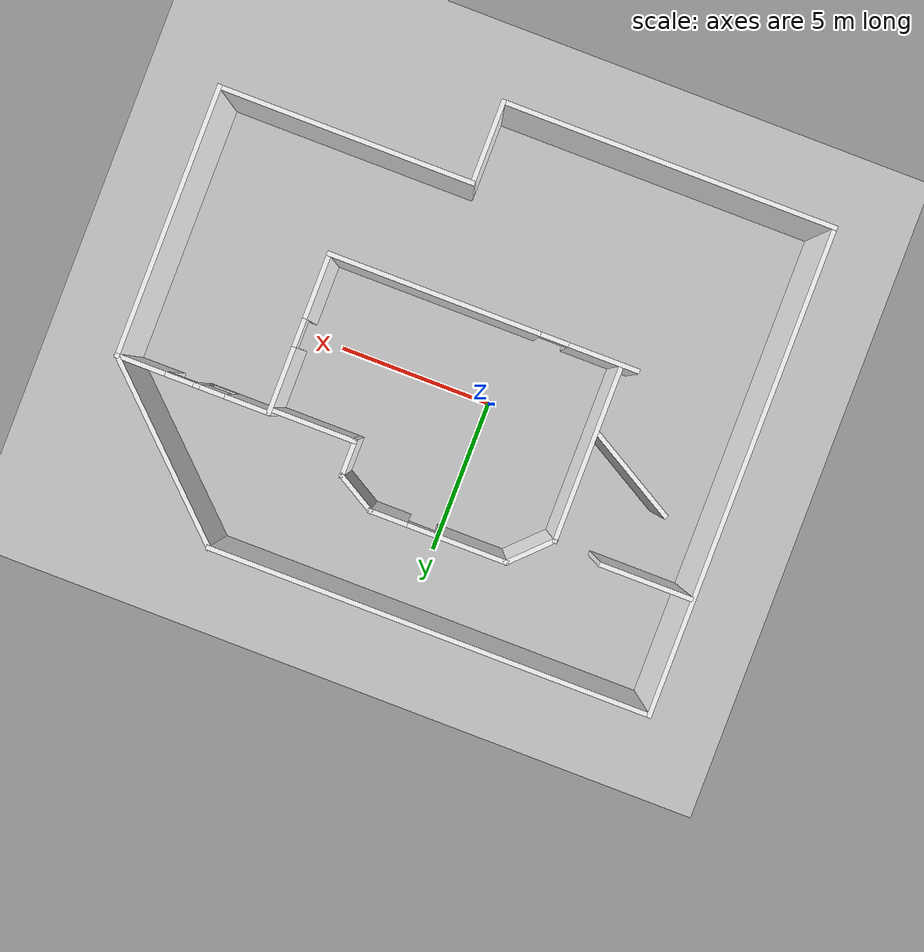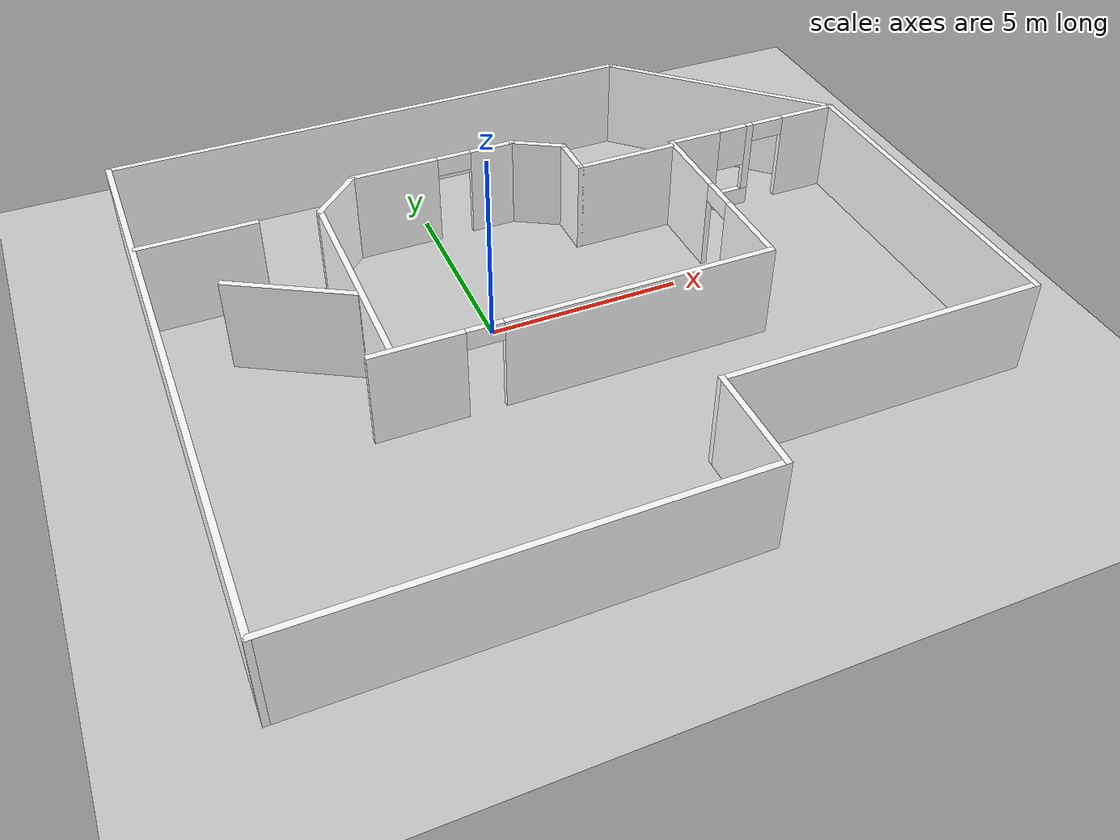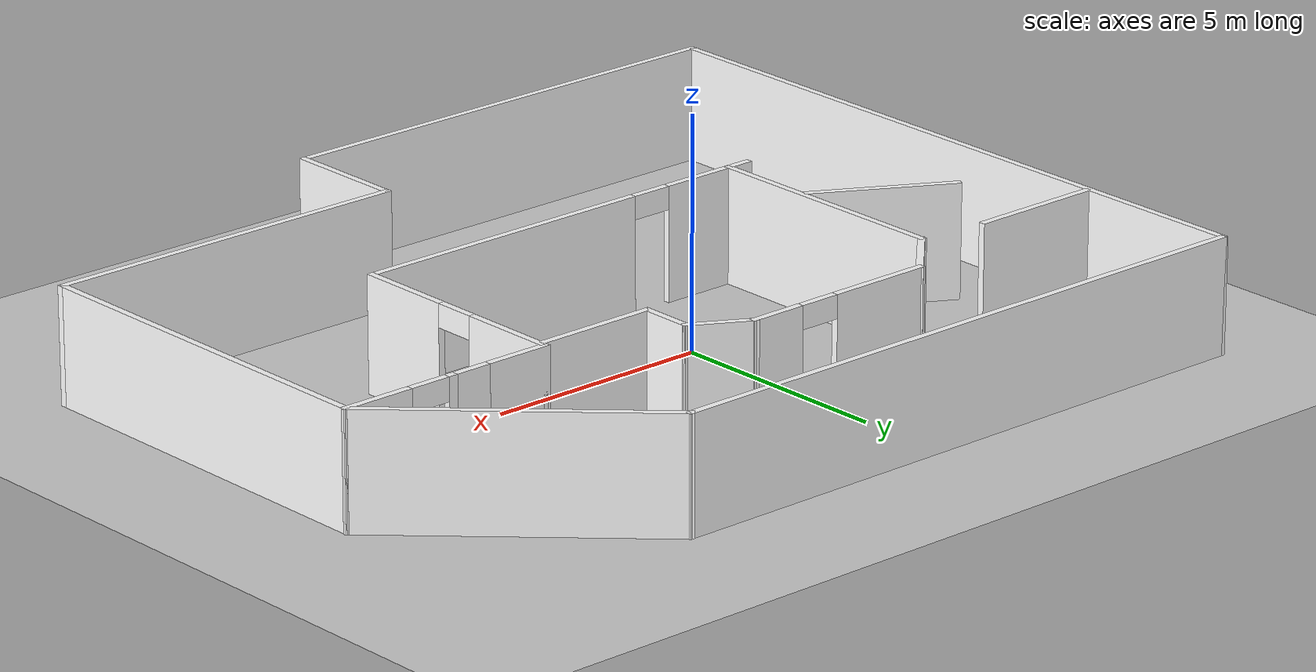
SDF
<?xml version="1.0" ?>
<sdf version="1.6">
  <world name="empty_world">
    <include>
      <uri>model://ground_plane</uri>
    </include>

    <include>
      <uri>model://sun</uri>
    </include>

    <physics type="ode">
      <max_step_size>0.001</max_step_size>
      <real_time_factor>1.0</real_time_factor>
      <real_time_update_rate>1000</real_time_update_rate>
    </physics>

    <model name='Untitled'>
    <pose>1.64552 -0.764481 0 0 -0 0</pose>
    <link name='Wall_0'>
      <pose>-0.44052 -1.71552 0 0 -0 0</pose>
      <visual name='Wall_0_Visual_0'>
        <pose>-3.86774 0 1.25 0 -0 0</pose>
        <geometry>
          <box>
            <size>2.26452 0.15 2.5</size>
          </box>
        </geometry>
        <material>
          <script>
            <uri>file://media/materials/scripts/gazebo.material</uri>
            <name>Gazebo/Brick</name>
          </script>
          <ambient>1 1 1 1</ambient>
        </material>
        <meta>
          <layer>0</layer>
        </meta>
      </visual>
      <collision name='Wall_0_Collision_0'>
        <geometry>
          <box>
            <size>2.26452 0.15 2.5</size>
          </box>
        </geometry>
        <pose>-3.86774 0 1.25 0 -0 0</pose>
      </collision>
      <visual name='Wall_0_Visual_1'>
        <pose>1.58226 0 1.25 0 -0 0</pose>
        <geometry>
          <box>
            <size>6.83548 0.15 2.5</size>
          </box>
        </geometry>
        <material>
          <script>
            <uri>file://media/materials/scripts/gazebo.material</uri>
            <name>Gazebo/Brick</name>
          </script>
          <ambient>1 1 1 1</ambient>
        </material>
        <meta>
          <layer>0</layer>
        </meta>
      </visual>
      <collision name='Wall_0_Collision_1'>
        <geometry>
          <box>
            <size>6.83548 0.15 2.5</size>
          </box>
        </geometry>
        <pose>1.58226 0 1.25 0 -0 0</pose>
      </collision>
      <visual name='Wall_0_Visual_2'>
        <pose>-2.28548 0 2.25 0 -0 0</pose>
        <geometry>
          <box>
            <size>0.9 0.15 0.5</size>
          </box>
        </geometry>
        <material>
          <script>
            <uri>file://media/materials/scripts/gazebo.material</uri>
            <name>Gazebo/Brick</name>
          </script>
          <ambient>1 1 1 1</ambient>
        </material>
        <meta>
          <layer>0</layer>
        </meta>
      </visual>
      <collision name='Wall_0_Collision_2'>
        <geometry>
          <box>
            <size>0.9 0.15 0.5</size>
          </box>
        </geometry>
        <pose>-2.28548 0 2.25 0 -0 0</pose>
      </collision>
    </link>
    <link name='Wall_1'>
      <pose>4.48448 0.834481 0 0 -0 1.5708</pose>
      <visual name='Wall_1_Visual_0'>
        <pose>-1.54945 0 1.25 0 -0 0</pose>
        <geometry>
          <box>
            <size>2.1511 0.15 2.5</size>
          </box>
        </geometry>
        <material>
          <script>
            <uri>file://media/materials/scripts/gazebo.material</uri>
            <name>Gazebo/Brick</name>
          </script>
          <ambient>1 1 1 1</ambient>
        </material>
        <meta>
          <layer>0</layer>
        </meta>
      </visual>
      <collision name='Wall_1_Collision_0'>
        <geometry>
          <box>
            <size>2.1511 0.15 2.5</size>
          </box>
        </geometry>
        <pose>-1.54945 0 1.25 0 -0 0</pose>
      </collision>
      <visual name='Wall_1_Visual_1'>
        <pose>1.52555 0 1.25 0 -0 0</pose>
        <geometry>
          <box>
            <size>2.1989 0.15 2.5</size>
          </box>
        </geometry>
        <material>
          <script>
            <uri>file://media/materials/scripts/gazebo.material</uri>
            <name>Gazebo/Brick</name>
          </script>
          <ambient>1 1 1 1</ambient>
        </material>
        <meta>
          <layer>0</layer>
        </meta>
      </visual>
      <collision name='Wall_1_Collision_1'>
        <geometry>
          <box>
            <size>2.1989 0.15 2.5</size>
          </box>
        </geometry>
        <pose>1.52555 0 1.25 0 -0 0</pose>
      </collision>
      <visual name='Wall_1_Visual_2'>
        <pose>-0.023899 0 2.25 0 -0 0</pose>
        <geometry>
          <box>
            <size>0.9 0.15 0.5</size>
          </box>
        </geometry>
        <material>
          <script>
            <uri>file://media/materials/scripts/gazebo.material</uri>
            <name>Gazebo/Brick</name>
          </script>
          <ambient>1 1 1 1</ambient>
        </material>
        <meta>
          <layer>0</layer>
        </meta>
      </visual>
      <collision name='Wall_1_Collision_2'>
        <geometry>
          <box>
            <size>0.9 0.15 0.5</size>
          </box>
        </geometry>
        <pose>-0.023899 0 2.25 0 -0 0</pose>
      </collision>
    </link>
    <link name='Wall_11'>
      <collision name='Wall_11_Collision'>
        <geometry>
          <box>
            <size>5.75 0.15 2.5</size>
          </box>
        </geometry>
        <pose>0 0 1.25 0 -0 0</pose>
      </collision>
      <visual name='Wall_11_Visual'>
        <pose>0 0 1.25 0 -0 0</pose>
        <geometry>
          <box>
            <size>5.75 0.15 2.5</size>
          </box>
        </geometry>
        <material>
          <script>
            <uri>file://media/materials/scripts/gazebo.material</uri>
            <name>Gazebo/Brick</name>
          </script>
          <ambient>1 1 1 1</ambient>
        </material>
        <meta>
          <layer>0</layer>
        </meta>
      </visual>
      <pose>-4.87015 1.10234 0 0 -0 1.5708</pose>
    </link>
    <link name='Wall_12'>
      <collision name='Wall_12_Collision'>
        <geometry>
          <box>
            <size>1.75 0.15 2.5</size>
          </box>
        </geometry>
        <pose>0 0 1.25 0 -0 0</pose>
      </collision>
      <visual name='Wall_12_Visual'>
        <pose>0 0 1.25 0 -0 0</pose>
        <geometry>
          <box>
            <size>1.75 0.15 2.5</size>
          </box>
        </geometry>
        <material>
          <script>
            <uri>file://media/materials/scripts/gazebo.material</uri>
            <name>Gazebo/Brick</name>
          </script>
          <ambient>1 1 1 1</ambient>
        </material>
        <meta>
          <layer>0</layer>
        </meta>
      </visual>
      <pose>-4.30446 4.46802 0 0 -0 0.785398</pose>
    </link>
    <link name='Wall_13'>
      <pose>-1.56378 5.03371 0 0 -0 0</pose>
      <visual name='Wall_13_Visual_0'>
        <pose>-1.08154 0 1.25 0 -0 0</pose>
        <geometry>
          <box>
            <size>2.33691 0.15 2.5</size>
          </box>
        </geometry>
        <material>
          <script>
            <uri>file://media/materials/scripts/gazebo.material</uri>
            <name>Gazebo/Brick</name>
          </script>
          <ambient>1 1 1 1</ambient>
        </material>
        <meta>
          <layer>0</layer>
        </meta>
      </visual>
      <collision name='Wall_13_Collision_0'>
        <geometry>
          <box>
            <size>2.33691 0.15 2.5</size>
          </box>
        </geometry>
        <pose>-1.08154 0 1.25 0 -0 0</pose>
      </collision>
      <visual name='Wall_13_Visual_1'>
        <pose>1.61845 0 1.25 0 -0 0</pose>
        <geometry>
          <box>
            <size>1.26309 0.15 2.5</size>
          </box>
        </geometry>
        <material>
          <script>
            <uri>file://media/materials/scripts/gazebo.material</uri>
            <name>Gazebo/Brick</name>
          </script>
          <ambient>1 1 1 1</ambient>
        </material>
        <meta>
          <layer>0</layer>
        </meta>
      </visual>
      <collision name='Wall_13_Collision_1'>
        <geometry>
          <box>
            <size>1.26309 0.15 2.5</size>
          </box>
        </geometry>
        <pose>1.61845 0 1.25 0 -0 0</pose>
      </collision>
      <visual name='Wall_13_Visual_2'>
        <pose>0.536909 0 2.25 0 -0 0</pose>
        <geometry>
          <box>
            <size>0.9 0.15 0.5</size>
          </box>
        </geometry>
        <material>
          <script>
            <uri>file://media/materials/scripts/gazebo.material</uri>
            <name>Gazebo/Brick</name>
          </script>
          <ambient>1 1 1 1</ambient>
        </material>
        <meta>
          <layer>0</layer>
        </meta>
      </visual>
      <collision name='Wall_13_Collision_2'>
        <geometry>
          <box>
            <size>0.9 0.15 0.5</size>
          </box>
        </geometry>
        <pose>0.536909 0 2.25 0 -0 0</pose>
      </collision>
    </link>
    <link name='Wall_14'>
      <collision name='Wall_14_Collision'>
        <geometry>
          <box>
            <size>1.5 0.15 2.5</size>
          </box>
        </geometry>
        <pose>0 0 1.25 0 -0 0</pose>
      </collision>
      <visual name='Wall_14_Visual'>
        <pose>0 0 1.25 0 -0 0</pose>
        <geometry>
          <box>
            <size>1.5 0.15 2.5</size>
          </box>
        </geometry>
        <material>
          <script>
            <uri>file://media/materials/scripts/gazebo.material</uri>
            <name>Gazebo/Brick</name>
          </script>
          <ambient>1 1 1 1</ambient>
        </material>
        <meta>
          <layer>0</layer>
        </meta>
      </visual>
      <pose>1.19579 4.69621 0 0 -0 -0.523599</pose>
    </link>
    <link name='Wall_15'>
      <collision name='Wall_15_Collision'>
        <geometry>
          <box>
            <size>1.25 0.15 2.5</size>
          </box>
        </geometry>
        <pose>0 0 1.25 0 -0 0</pose>
      </collision>
      <visual name='Wall_15_Visual'>
        <pose>0 0 1.25 0 -0 0</pose>
        <geometry>
          <box>
            <size>1.25 0.15 2.5</size>
          </box>
        </geometry>
        <material>
          <script>
            <uri>file://media/materials/scripts/gazebo.material</uri>
            <name>Gazebo/Brick</name>
          </script>
          <ambient>1 1 1 1</ambient>
        </material>
        <meta>
          <layer>0</layer>
        </meta>
      </visual>
      <pose>1.78036 3.80871 0 0 -0 -1.5708</pose>
    </link>
    <link name='Wall_16'>
      <collision name='Wall_16_Collision'>
        <geometry>
          <box>
            <size>2.75 0.15 2.5</size>
          </box>
        </geometry>
        <pose>0 0 1.25 0 -0 0</pose>
      </collision>
      <visual name='Wall_16_Visual'>
        <pose>0 0 1.25 0 -0 0</pose>
        <geometry>
          <box>
            <size>2.75 0.15 2.5</size>
          </box>
        </geometry>
        <material>
          <script>
            <uri>file://media/materials/scripts/gazebo.material</uri>
            <name>Gazebo/Brick</name>
          </script>
          <ambient>1 1 1 1</ambient>
        </material>
        <meta>
          <layer>0</layer>
        </meta>
      </visual>
      <pose>3.08036 3.25871 0 0 -0 0</pose>
    </link>
    <link name='Wall_18'>
      <collision name='Wall_18_Collision'>
        <geometry>
          <box>
            <size>3 0.15 2.5</size>
          </box>
        </geometry>
        <pose>0 0 1.25 0 -0 0</pose>
      </collision>
      <visual name='Wall_18_Visual'>
        <pose>0 0 1.25 0 -0 0</pose>
        <geometry>
          <box>
            <size>3 0.15 2.5</size>
          </box>
        </geometry>
        <material>
          <script>
            <uri>file://media/materials/scripts/gazebo.material</uri>
            <name>Gazebo/Brick</name>
          </script>
          <ambient>1 1 1 1</ambient>
        </material>
        <meta>
          <layer>0</layer>
        </meta>
      </visual>
      <pose>-7.8548 4.08748 0 0 -0 0</pose>
    </link>
    <link name='Wall_2'>
      <pose>6.90948 3.38448 0 0 -0 0</pose>
      <visual name='Wall_2_Visual_0'>
        <pose>-1.75694 0 1.25 0 -0 0</pose>
        <geometry>
          <box>
            <size>1.48611 0.15 2.5</size>
          </box>
        </geometry>
        <material>
          <script>
            <uri>file://media/materials/scripts/gazebo.material</uri>
            <name>Gazebo/Brick</name>
          </script>
          <ambient>1 1 1 1</ambient>
        </material>
        <meta>
          <layer>0</layer>
        </meta>
      </visual>
      <collision name='Wall_2_Collision_0'>
        <geometry>
          <box>
            <size>1.48611 0.15 2.5</size>
          </box>
        </geometry>
        <pose>-1.75694 0 1.25 0 -0 0</pose>
      </collision>
      <visual name='Wall_2_Visual_1'>
        <pose>1.69398 0 1.25 0 -0 0</pose>
        <geometry>
          <box>
            <size>1.61204 0.15 2.5</size>
          </box>
        </geometry>
        <material>
          <script>
            <uri>file://media/materials/scripts/gazebo.material</uri>
            <name>Gazebo/Brick</name>
          </script>
          <ambient>1 1 1 1</ambient>
        </material>
        <meta>
          <layer>0</layer>
        </meta>
      </visual>
      <collision name='Wall_2_Collision_1'>
        <geometry>
          <box>
            <size>1.61204 0.15 2.5</size>
          </box>
        </geometry>
        <pose>1.69398 0 1.25 0 -0 0</pose>
      </collision>
      <visual name='Wall_2_Visual_2'>
        <pose>-0.512965 0 0.25 0 -0 0</pose>
        <geometry>
          <box>
            <size>1.00185 0.15 0.5</size>
          </box>
        </geometry>
        <material>
          <script>
            <uri>file://media/materials/scripts/gazebo.material</uri>
            <name>Gazebo/Brick</name>
          </script>
          <ambient>1 1 1 1</ambient>
        </material>
        <meta>
          <layer>0</layer>
        </meta>
      </visual>
      <collision name='Wall_2_Collision_2'>
        <geometry>
          <box>
            <size>1.00185 0.15 0.5</size>
          </box>
        </geometry>
        <pose>-0.512965 0 0.25 0 -0 0</pose>
      </collision>
      <visual name='Wall_2_Visual_3'>
        <pose>-0.112965 0 1.5 0 -0 0</pose>
        <geometry>
          <box>
            <size>0.201845 0.15 2</size>
          </box>
        </geometry>
        <material>
          <script>
            <uri>file://media/materials/scripts/gazebo.material</uri>
            <name>Gazebo/Brick</name>
          </script>
          <ambient>1 1 1 1</ambient>
        </material>
        <meta>
          <layer>0</layer>
        </meta>
      </visual>
      <collision name='Wall_2_Collision_3'>
        <geometry>
          <box>
            <size>0.201845 0.15 2</size>
          </box>
        </geometry>
        <pose>-0.112965 0 1.5 0 -0 0</pose>
      </collision>
      <visual name='Wall_2_Visual_4'>
        <pose>-0.613887 0 1.9 0 -0 0</pose>
        <geometry>
          <box>
            <size>0.8 0.15 1.2</size>
          </box>
        </geometry>
        <material>
          <script>
            <uri>file://media/materials/scripts/gazebo.material</uri>
            <name>Gazebo/Brick</name>
          </script>
          <ambient>1 1 1 1</ambient>
        </material>
        <meta>
          <layer>0</layer>
        </meta>
      </visual>
      <collision name='Wall_2_Collision_4'>
        <geometry>
          <box>
            <size>0.8 0.15 1.2</size>
          </box>
        </geometry>
        <pose>-0.613887 0 1.9 0 -0 0</pose>
      </collision>
      <visual name='Wall_2_Visual_5'>
        <pose>0.437958 0 2.25 0 -0 0</pose>
        <geometry>
          <box>
            <size>0.9 0.15 0.5</size>
          </box>
        </geometry>
        <material>
          <script>
            <uri>file://media/materials/scripts/gazebo.material</uri>
            <name>Gazebo/Brick</name>
          </script>
          <ambient>1 1 1 1</ambient>
        </material>
        <meta>
          <layer>0</layer>
        </meta>
      </visual>
      <collision name='Wall_2_Collision_5'>
        <geometry>
          <box>
            <size>0.9 0.15 0.5</size>
          </box>
        </geometry>
        <pose>0.437958 0 2.25 0 -0 0</pose>
      </collision>
    </link>
    <link name='Wall_20'>
      <collision name='Wall_20_Collision'>
        <geometry>
          <box>
            <size>3.25 0.15 2.5</size>
          </box>
        </geometry>
        <pose>0 0 1.25 0 -0 0</pose>
      </collision>
      <visual name='Wall_20_Visual'>
        <pose>0 0 1.25 0 -0 0</pose>
        <geometry>
          <box>
            <size>3.25 0.15 2.5</size>
          </box>
        </geometry>
        <material>
          <script>
            <uri>file://media/materials/scripts/gazebo.material</uri>
            <name>Gazebo/Brick</name>
          </script>
          <ambient>1 1 1 1</ambient>
        </material>
        <meta>
          <layer>0</layer>
        </meta>
      </visual>
      <pose>-6.33385 1.26194 0 0 -0 2.61799</pose>
    </link>
    <link name='Wall_3'>
      <collision name='Wall_3_Collision'>
        <geometry>
          <box>
            <size>8.75 0.15 2.5</size>
          </box>
        </geometry>
        <pose>0 0 1.25 0 -0 0</pose>
      </collision>
      <visual name='Wall_3_Visual'>
        <pose>0 0 1.25 0 -0 0</pose>
        <geometry>
          <box>
            <size>8.75 0.15 2.5</size>
          </box>
        </geometry>
        <material>
          <script>
            <uri>file://media/materials/scripts/gazebo.material</uri>
            <name>Gazebo/Brick</name>
          </script>
          <ambient>1 1 1 1</ambient>
        </material>
        <meta>
          <layer>0</layer>
        </meta>
      </visual>
      <pose>9.33448 -0.915519 0 0 -0 -1.5708</pose>
    </link>
    <link name='Wall_4'>
      <collision name='Wall_4_Collision'>
        <geometry>
          <box>
            <size>8.25 0.15 2.5</size>
          </box>
        </geometry>
        <pose>0 0 1.25 0 -0 0</pose>
      </collision>
      <visual name='Wall_4_Visual'>
        <pose>0 0 1.25 0 -0 0</pose>
        <geometry>
          <box>
            <size>8.25 0.15 2.5</size>
          </box>
        </geometry>
        <material>
          <script>
            <uri>file://media/materials/scripts/gazebo.material</uri>
            <name>Gazebo/Brick</name>
          </script>
          <ambient>1 1 1 1</ambient>
        </material>
        <meta>
          <layer>0</layer>
        </meta>
      </visual>
      <pose>5.28448 -5.21552 0 0 -0 3.14159</pose>
    </link>
    <link name='Wall_5'>
      <collision name='Wall_5_Collision'>
        <geometry>
          <box>
            <size>2.75 0.15 2.5</size>
          </box>
        </geometry>
        <pose>0 0 1.25 0 -0 0</pose>
      </collision>
      <visual name='Wall_5_Visual'>
        <pose>0 0 1.25 0 -0 0</pose>
        <geometry>
          <box>
            <size>2.75 0.15 2.5</size>
          </box>
        </geometry>
        <material>
          <script>
            <uri>file://media/materials/scripts/gazebo.material</uri>
            <name>Gazebo/Brick</name>
          </script>
          <ambient>1 1 1 1</ambient>
        </material>
        <meta>
          <layer>0</layer>
        </meta>
      </visual>
      <pose>1.23448 -6.51552 0 0 -0 -1.5708</pose>
    </link>
    <link name='Wall_6'>
      <collision name='Wall_6_Collision'>
        <geometry>
          <box>
            <size>10.75 0.15 2.5</size>
          </box>
        </geometry>
        <pose>0 0 1.25 0 -0 0</pose>
      </collision>
      <visual name='Wall_6_Visual'>
        <pose>0 0 1.25 0 -0 0</pose>
        <geometry>
          <box>
            <size>10.75 0.15 2.5</size>
          </box>
        </geometry>
        <material>
          <script>
            <uri>file://media/materials/scripts/gazebo.material</uri>
            <name>Gazebo/Brick</name>
          </script>
          <ambient>1 1 1 1</ambient>
        </material>
        <meta>
          <layer>0</layer>
        </meta>
      </visual>
      <pose>-4.06552 -7.81552 0 0 -0 3.14159</pose>
    </link>
    <link name='Wall_7'>
      <collision name='Wall_7_Collision'>
        <geometry>
          <box>
            <size>15.75 0.15 2.5</size>
          </box>
        </geometry>
        <pose>0 0 1.25 0 -0 0</pose>
      </collision>
      <visual name='Wall_7_Visual'>
        <pose>0 0 1.25 0 -0 0</pose>
        <geometry>
          <box>
            <size>15.75 0.15 2.5</size>
          </box>
        </geometry>
        <material>
          <script>
            <uri>file://media/materials/scripts/gazebo.material</uri>
            <name>Gazebo/Brick</name>
          </script>
          <ambient>1 1 1 1</ambient>
        </material>
        <meta>
          <layer>0</layer>
        </meta>
      </visual>
      <pose>-9.36552 -0.015519 0 0 -0 1.5708</pose>
    </link>
    <link name='Wall_8'>
      <collision name='Wall_8_Collision'>
        <geometry>
          <box>
            <size>14.25 0.15 2.5</size>
          </box>
        </geometry>
        <pose>0 0 1.25 0 -0 0</pose>
      </collision>
      <visual name='Wall_8_Visual'>
        <pose>0 0 1.25 0 -0 0</pose>
        <geometry>
          <box>
            <size>14.25 0.15 2.5</size>
          </box>
        </geometry>
        <material>
          <script>
            <uri>file://media/materials/scripts/gazebo.material</uri>
            <name>Gazebo/Brick</name>
          </script>
          <ambient>1 1 1 1</ambient>
        </material>
        <meta>
          <layer>0</layer>
        </meta>
      </visual>
      <pose>-2.31552 7.78448 0 0 -0 0</pose>
    </link>
    <link name='Wall_9'>
      <collision name='Wall_9_Collision'>
        <geometry>
          <box>
            <size>6.51553 0.15 2.5</size>
          </box>
        </geometry>
        <pose>0 0 1.25 0 -0 0</pose>
      </collision>
      <visual name='Wall_9_Visual'>
        <pose>0 0 1.25 0 -0 0</pose>
        <geometry>
          <box>
            <size>6.51553 0.15 2.5</size>
          </box>
        </geometry>
        <material>
          <script>
            <uri>file://media/materials/scripts/gazebo.material</uri>
            <name>Gazebo/Brick</name>
          </script>
          <ambient>1 1 1 1</ambient>
        </material>
        <meta>
          <layer>0</layer>
        </meta>
      </visual>
      <pose>7.03448 5.58448 0 0 -0 -0.76318</pose>
    </link>
    <static>1</static>
  </model>
  </world>
</sdf>
